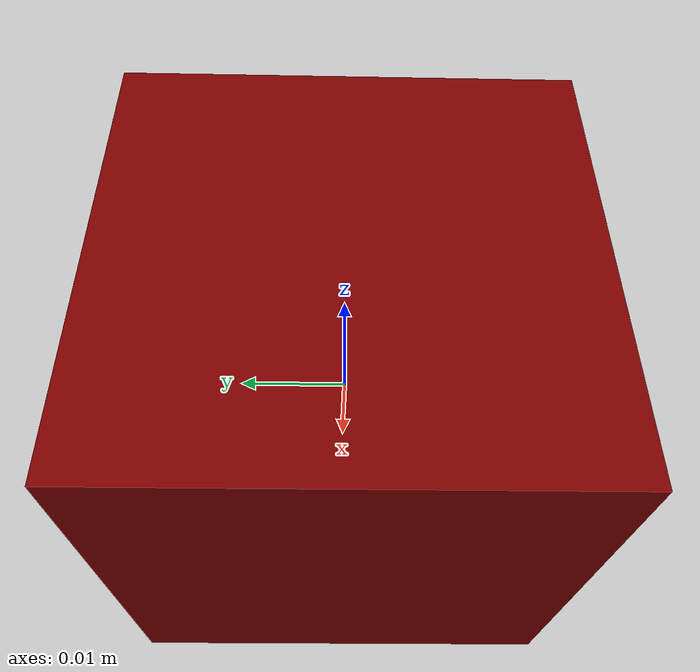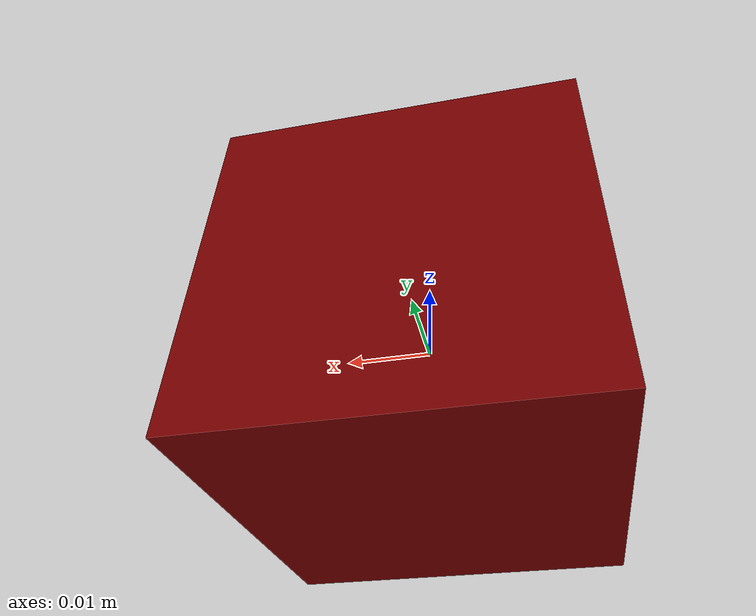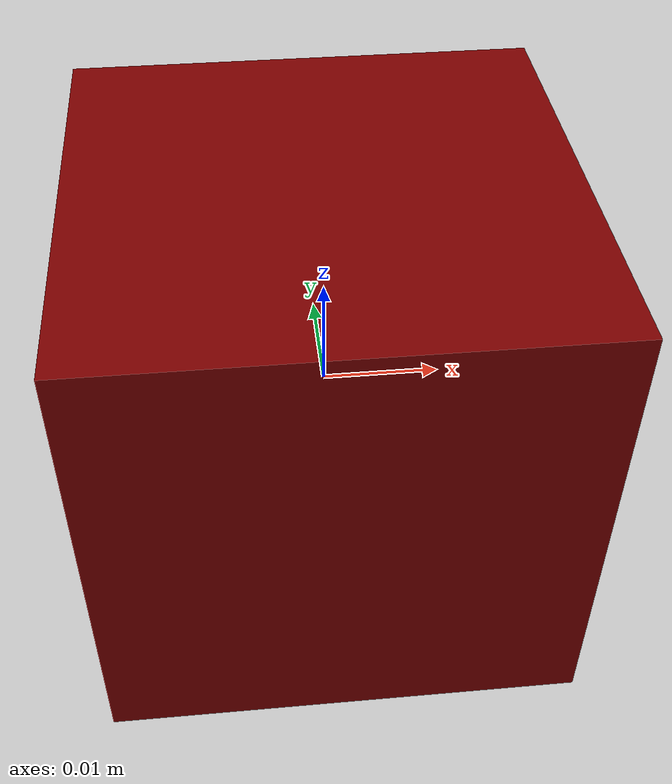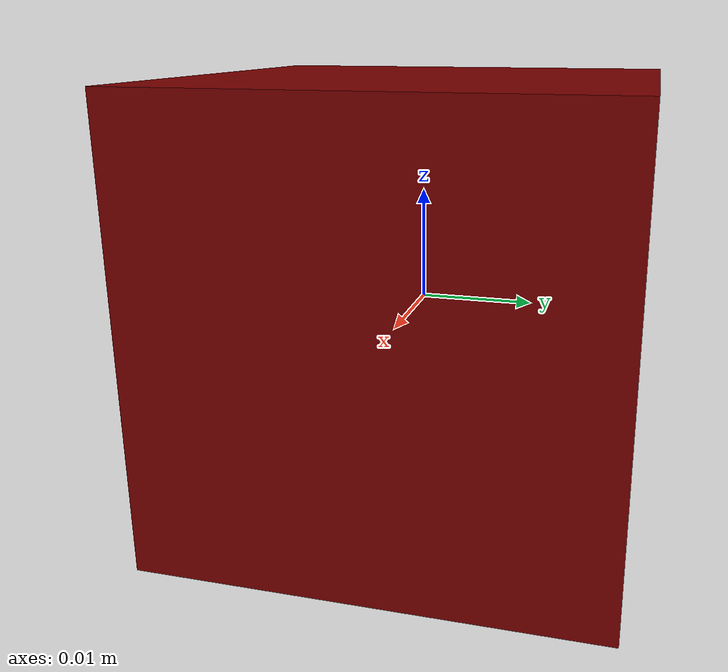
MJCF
<?xml version='1.0' encoding='utf-8'?>
<mujoco model="cube"><asset /><worldbody><body pos="0 0 0" name="cube_main"><geom rgba="0.5 0 0 1" density="1000" friction="1 0.005 0.0001" solref="0.02 1.0" solimp="0.9 0.95 0.001" type="box" size="0.02 0.02 0.02" pos="0 0 0" group="0" name="cube_g0" /><geom conaffinity="0" contype="0" mass="1e-8" rgba="1 0 0 1" type="box" size="0.02 0.02 0.02" pos="0 0 0" group="1" name="cube_g0_vis" /><joint type="free" name="cube_joint0" /><site type="sphere" group="0" pos="0 0 0" size="0.002 0.002 0.002" rgba="1 0 0 1" name="cube_default_site" /></body></worldbody></mujoco>
